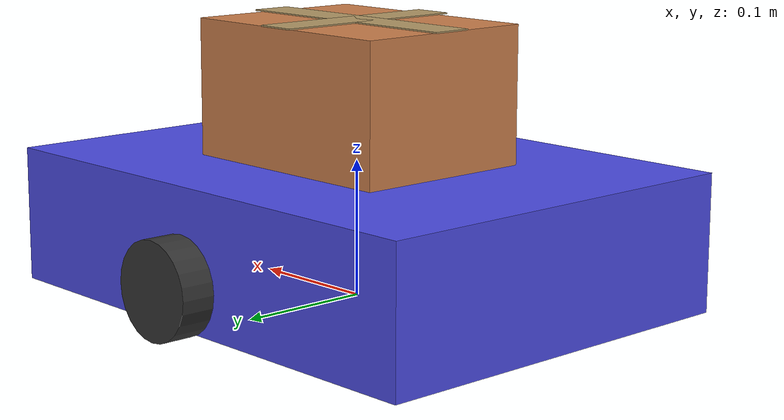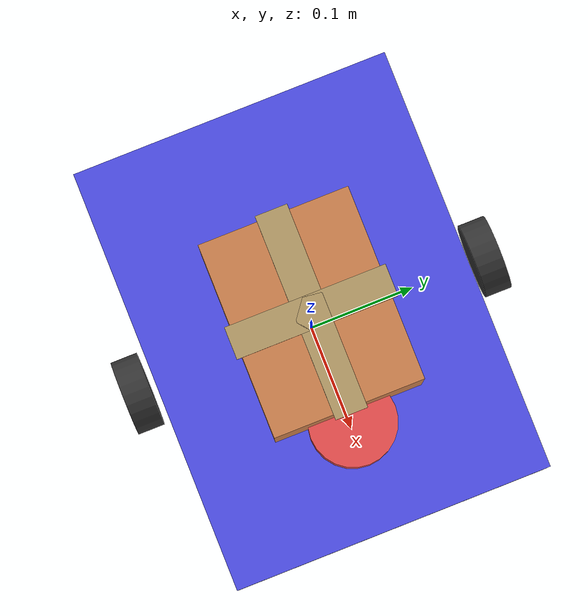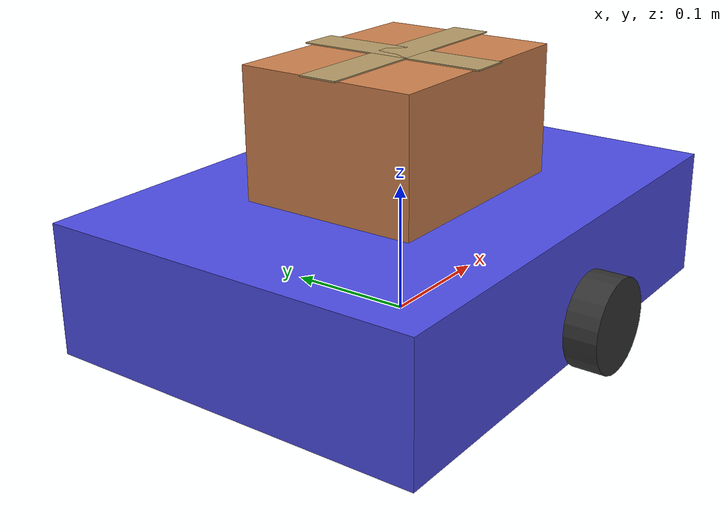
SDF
<?xml version="1.0" ?>
<sdf version="1.8">
  <model name="delivery_robot">
    <static>false</static>

    <!-- Base link / chassis -->
    <link name="base_link">
      <pose>0 0 0.05 0 0 0</pose>

      <inertial>
        <mass>5.0</mass>
        <inertia>
          <ixx>0.083</ixx>
          <ixy>0</ixy>
          <ixz>0</ixz>
          <iyy>0.083</iyy>
          <iyz>0</iyz>
          <izz>0.125</izz>
        </inertia>
      </inertial>

      <collision name="base_collision">
        <geometry>
          <box>
            <size>0.4 0.3 0.1</size>
          </box>
        </geometry>
      </collision>

      <visual name="base_visual">
        <geometry>
          <box>
            <size>0.4 0.3 0.1</size>
          </box>
        </geometry>
        <material>
          <ambient>0.2 0.2 0.8 1</ambient>
          <diffuse>0.3 0.3 0.9 1</diffuse>
        </material>
      </visual>
    </link>

    <!-- Left wheel -->
    <link name="left_wheel">
      <pose>0.0 0.17 0.035 -1.5707963 0 0</pose>

      <inertial>
        <mass>0.5</mass>
        <inertia>
          <ixx>0.0005</ixx>
          <ixy>0</ixy>
          <ixz>0</ixz>
          <iyy>0.0005</iyy>
          <iyz>0</iyz>
          <izz>0.001</izz>
        </inertia>
      </inertial>

      <collision name="left_wheel_collision">
        <geometry>
          <cylinder>
            <radius>0.035</radius>
            <length>0.025</length>
          </cylinder>
        </geometry>
        <surface>
          <friction>
            <ode>
              <mu>1.0</mu>
              <mu2>1.0</mu2>
            </ode>
          </friction>
        </surface>
      </collision>

      <visual name="left_wheel_visual">
        <geometry>
          <cylinder>
            <radius>0.035</radius>
            <length>0.025</length>
          </cylinder>
        </geometry>
        <material>
          <ambient>0.1 0.1 0.1 1</ambient>
          <diffuse>0.2 0.2 0.2 1</diffuse>
        </material>
      </visual>
    </link>

    <!-- Right wheel -->
    <link name="right_wheel">
      <pose>0.0 -0.17 0.035 -1.5707963 0 0</pose>

      <inertial>
        <mass>0.5</mass>
        <inertia>
          <ixx>0.0005</ixx>
          <ixy>0</ixy>
          <ixz>0</ixz>
          <iyy>0.0005</iyy>
          <iyz>0</iyz>
          <izz>0.001</izz>
        </inertia>
      </inertial>

      <collision name="right_wheel_collision">
        <geometry>
          <cylinder>
            <radius>0.035</radius>
            <length>0.025</length>
          </cylinder>
        </geometry>
        <surface>
          <friction>
            <ode>
              <mu>1.0</mu>
              <mu2>1.0</mu2>
            </ode>
          </friction>
        </surface>
      </collision>

      <visual name="right_wheel_visual">
        <geometry>
          <cylinder>
            <radius>0.035</radius>
            <length>0.025</length>
          </cylinder>
        </geometry>
        <material>
          <ambient>0.1 0.1 0.1 1</ambient>
          <diffuse>0.2 0.2 0.2 1</diffuse>
        </material>
      </visual>
    </link>

    <!-- Caster wheel (front) -->
    <link name="caster_wheel">
      <pose>0.15 0 0.015 0 0 0</pose>

      <inertial>
        <mass>0.2</mass>
        <inertia>
          <ixx>0.0001</ixx>
          <ixy>0</ixy>
          <ixz>0</ixz>
          <iyy>0.0001</iyy>
          <iyz>0</iyz>
          <izz>0.0001</izz>
        </inertia>
      </inertial>

      <collision name="caster_collision">
        <geometry>
          <sphere>
            <radius>0.015</radius>
          </sphere>
        </geometry>
        <surface>
          <friction>
            <ode>
              <mu>0.01</mu>
              <mu2>0.01</mu2>
            </ode>
          </friction>
        </surface>
      </collision>

      <visual name="caster_visual">
        <geometry>
          <sphere>
            <radius>0.015</radius>
          </sphere>
        </geometry>
        <material>
          <ambient>0.5 0.5 0.5 1</ambient>
          <diffuse>0.6 0.6 0.6 1</diffuse>
        </material>
      </visual>
    </link>

    <!-- LiDAR sensor link -->
    <link name="lidar_link">
      <pose>0.1 0 0.12 0 0 0</pose>

      <inertial>
        <mass>0.2</mass>
        <inertia>
          <ixx>0.0001</ixx>
          <ixy>0</ixy>
          <ixz>0</ixz>
          <iyy>0.0001</iyy>
          <iyz>0</iyz>
          <izz>0.0001</izz>
        </inertia>
      </inertial>

      <collision name="lidar_collision">
        <geometry>
          <cylinder>
            <radius>0.04</radius>
            <length>0.04</length>
          </cylinder>
        </geometry>
      </collision>

      <visual name="lidar_visual">
        <geometry>
          <cylinder>
            <radius>0.04</radius>
            <length>0.04</length>
          </cylinder>
        </geometry>
        <material>
          <ambient>0.8 0.2 0.2 1</ambient>
          <diffuse>0.9 0.3 0.3 1</diffuse>
        </material>
      </visual>

      <!-- 2D LiDAR sensor -->
      <!-- IMPORTANT: Use absolute topic name (starting with /) to avoid Gazebo namespacing -->
      <sensor name="lidar" type="gpu_lidar">
        <always_on>true</always_on>
        <update_rate>10</update_rate>
        <visualize>false</visualize>
        <topic>/scan</topic>
        <lidar>
          <scan>
            <horizontal>
              <samples>360</samples>
              <resolution>1</resolution>
              <min_angle>-3.14159</min_angle>
              <max_angle>3.14159</max_angle>
            </horizontal>
          </scan>
          <range>
            <min>0.12</min>
            <max>10.0</max>
            <resolution>0.01</resolution>
          </range>
          <noise>
            <type>gaussian</type>
            <mean>0.0</mean>
            <stddev>0.01</stddev>
          </noise>
        </lidar>
      </sensor>
    </link>

    <!-- Joints -->
    <joint name="left_wheel_joint" type="revolute">
      <parent>base_link</parent>
      <child>left_wheel</child>
      <axis>
        <xyz>0 0 1</xyz>
        <limit>
          <lower>-1e16</lower>
          <upper>1e16</upper>
        </limit>
      </axis>
    </joint>

    <joint name="right_wheel_joint" type="revolute">
      <parent>base_link</parent>
      <child>right_wheel</child>
      <axis>
        <xyz>0 0 1</xyz>
        <limit>
          <lower>-1e16</lower>
          <upper>1e16</upper>
        </limit>
      </axis>
    </joint>

    <joint name="caster_joint" type="ball">
      <parent>base_link</parent>
      <child>caster_wheel</child>
    </joint>

    <joint name="lidar_joint" type="fixed">
      <parent>base_link</parent>
      <child>lidar_link</child>
    </joint>

    <!-- Differential drive plugin -->
    <!-- IMPORTANT: Use absolute topic names (starting with /) to avoid Gazebo namespacing -->
    <!-- TF is disabled here - odom_to_tf node handles TF with wall clock timestamps -->
    <plugin filename="gz-sim-diff-drive-system" name="gz::sim::systems::DiffDrive">
      <left_joint>left_wheel_joint</left_joint>
      <right_joint>right_wheel_joint</right_joint>
      <wheel_separation>0.34</wheel_separation>
      <wheel_radius>0.035</wheel_radius>
      <odom_publish_frequency>20</odom_publish_frequency>
      <topic>/cmd_vel</topic>
      <odom_topic>/odom</odom_topic>
      <tf_topic>tf_gazebo_unused</tf_topic>
      <frame_id>odom</frame_id>
      <child_frame_id>base_link</child_frame_id>
    </plugin>

    <!-- Joint state publisher -->
    <plugin filename="gz-sim-joint-state-publisher-system" name="gz::sim::systems::JointStatePublisher">
      <topic>/joint_states</topic>
      <joint_name>left_wheel_joint</joint_name>
      <joint_name>right_wheel_joint</joint_name>
    </plugin>

    <!-- Delivery package (visual representation) -->
    <link name="delivery_package">
      <pose>0.0 0.0 0.15 0 0 0</pose>

      <inertial>
        <mass>0.5</mass>
        <inertia>
          <ixx>0.002</ixx>
          <ixy>0</ixy>
          <ixz>0</ixz>
          <iyy>0.002</iyy>
          <iyz>0</iyz>
          <izz>0.002</izz>
        </inertia>
      </inertial>

      <visual name="package_visual">
        <geometry>
          <box>
            <size>0.18 0.14 0.1</size>
          </box>
        </geometry>
        <material>
          <ambient>0.6 0.4 0.2 1</ambient>
          <diffuse>0.8 0.5 0.3 1</diffuse>
        </material>
      </visual>

      <!-- Package tape stripes -->
      <visual name="tape_stripe_1">
        <pose>0 0 0.051 0 0 0</pose>
        <geometry>
          <box>
            <size>0.19 0.03 0.001</size>
          </box>
        </geometry>
        <material>
          <ambient>0.6 0.5 0.3 1</ambient>
          <diffuse>0.7 0.6 0.4 1</diffuse>
        </material>
      </visual>

      <visual name="tape_stripe_2">
        <pose>0 0 0.051 0 0 1.5708</pose>
        <geometry>
          <box>
            <size>0.15 0.03 0.001</size>
          </box>
        </geometry>
        <material>
          <ambient>0.6 0.5 0.3 1</ambient>
          <diffuse>0.7 0.6 0.4 1</diffuse>
        </material>
      </visual>
    </link>

    <joint name="package_joint" type="fixed">
      <parent>base_link</parent>
      <child>delivery_package</child>
    </joint>

  </model>
</sdf>
